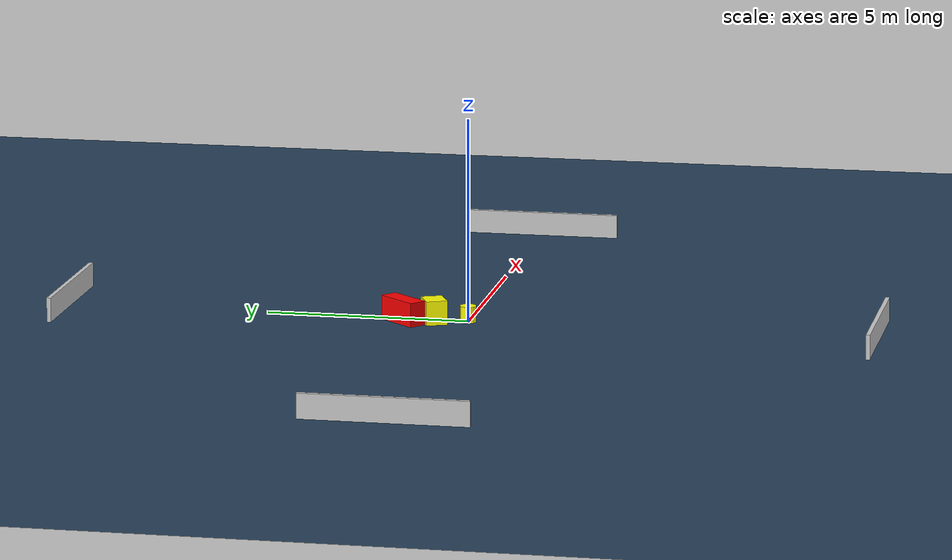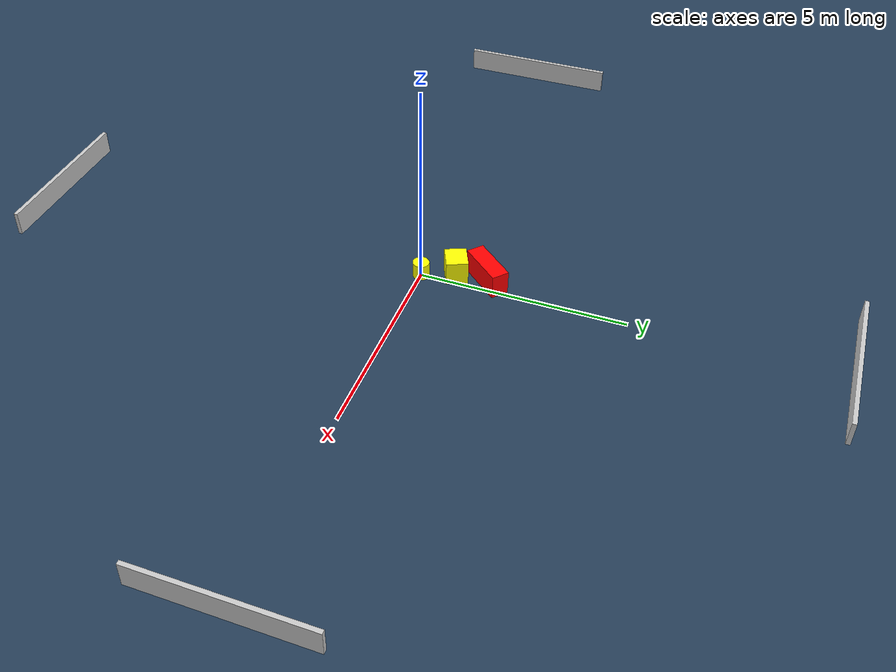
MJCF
<?xml version="1.0" ?>
<mujoco model="generated_environment">
  <option timestep="0.01" integrator="RK4" cone="elliptic"/>
  <default>
    <geom density="1"/>
  </default>
  <asset>
    <texture builtin="gradient" height="3072" name="skybox" rgb1="0.3 0.5 0.7" rgb2="0 0 0" type="skybox" width="512"/>
    <texture builtin="checker" height="300" name="groundplane" rgb1="0.2 0.3 0.4" rgb2="0.1 0.2 0.3" type="2d" width="300"/>
    <material name="groundplane" reflectance="0.2" texrepeat="5 5" texture="groundplane"/>
  </asset>
  <worldbody>
    <light dir="0 0 -1" directional="true" pos="0 0 1.5"/>
    <geom condim="3" friction="0.5 0.005 0.001" material="groundplane" name="floor" pos="0 0 0" size="0 0 0.05" type="plane"/>
    <body name="walls">
      <geom name="wall_1" condim="4" pos="-10.0 0.0 0.3" rgba="0.800000011920929 0.800000011920929 0.800000011920929 1.0" size="0.05 2.0 0.3" type="box"/>
      <geom name="wall_2" condim="4" pos="10.0 0.0 0.3" rgba="0.800000011920929 0.800000011920929 0.800000011920929 1.0" size="0.05 2.0 0.3" type="box"/>
      <geom name="wall_3" condim="4" pos="0.0 -10.0 0.3" rgba="0.800000011920929 0.800000011920929 0.800000011920929 1.0" size="2.0 0.05 0.3" type="box"/>
      <geom name="wall_4" condim="4" pos="0.0 10.0 0.3" rgba="0.800000011920929 0.800000011920929 0.800000011920929 1.0" size="2.0 0.05 0.3" type="box"/>
    </body>
    <body name="robot">
      <joint name="joint_x" type="slide" pos="0 0 0" axis="1 0 0"/>
      <joint name="joint_y" type="slide" pos="0 0 0" axis="0 1 0"/>
      <geom name="robot" type="cylinder" pos="0.0 0.0 0.2" size="0.2 0.2 0.0" mass="5.0" friction="1.0 0.005 0.0001" condim="4" rgba="1.0 1.0 0.0 1.0"/>
    </body>
    <body name="obstacle_1_movable">
      <geom name="obstacle_1_movable" condim="4" pos="-0.2608897296101874 0.7918350093055195 0.3" euler="0 0 114.17297084484008" friction="0.0 0.005 0.001" rgba="1.0 1.0 0.0 1.0" size="0.2633592111053614 0.29750697717433006 0.3" type="box" mass="0.1"/>
      <joint type="free"/>
    </body>
    <body name="obstacle_2_static">
      <geom name="obstacle_2_static" condim="4" pos="-0.33844625885992574 1.546151001271337 0.3" euler="0 0 138.93014853878393" friction="0.0 0.005 0.001" rgba="1.0 0.0 0.0 1.0" size="0.21603243574805076 0.5837525951215601 0.3" type="box"/>
    </body>
  </worldbody>
  <actuator>
    <motor name="actuator_x" joint="joint_x" gear="1" ctrlrange="-1 1"/>
    <motor name="actuator_y" joint="joint_y" gear="1" ctrlrange="-1 1"/>
  </actuator>
</mujoco>
